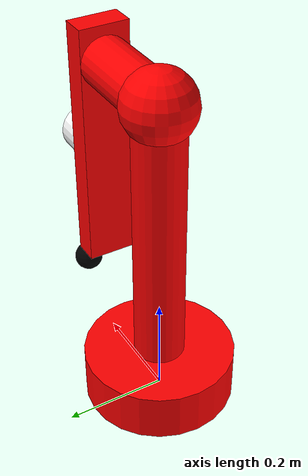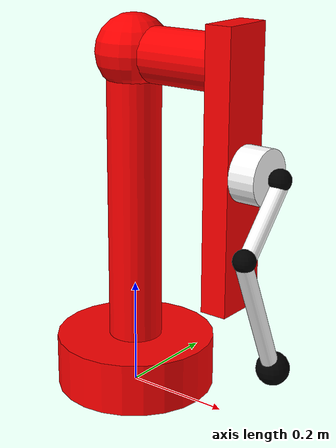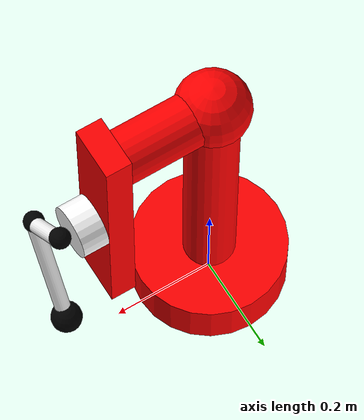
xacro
<?xml version="1.0" ?>
<robot name="dog_leg" xmlns:xacro="http://www.ros.org/wiki/xacro">

    <!-- property of robot -->
    <xacro:property name="under_base_length" value="0.1"/>
    <xacro:property name="under_base_radius" value="0.15"/>

        <!-- property of robot -->
    <xacro:property name="link_1_length" value="0.6"/>
    <xacro:property name="link_1_radius" value="0.05"/>

        <!-- property of robot -->
    <xacro:property name="link_2_radius" value="0.07"/>

            <!-- property of robot -->
    <xacro:property name="link_3_length" value="0.2"/>
    <xacro:property name="link_3_radius" value="0.05"/>

                <!-- property of robot -->
    <xacro:property name="link_4_x" value="0.05"/>
    <xacro:property name="link_4_y" value="0.1"/>
    <xacro:property name="link_4_z" value="0.5"/>

                <!-- property of robot -->
    <xacro:property name="leg_base_length" value="0.05"/>
    <xacro:property name="leg_base_radius" value="0.05"/>

                    <!-- property of robot -->
    <xacro:property name="up_leg_length" value="0.25"/>
    <xacro:property name="up_leg_radius" value="0.025"/>

    <!-- leg -->
    <xacro:property name ="leg1_r" value = "0.015"/>
    <xacro:property name = "leg1_h" value = "0.15"/>
    <xacro:property name = "leg2_r" value = "0.015"/>
    <xacro:property name = "leg2_h" value = "0.25"/>
    <!-- something -->
    <xacro:property name = "effort" value = "300"/>
    <xacro:property name = "velocity" value = "0.5"/>
    <xacro:property name = "lower" value = "-3.14"/>
    <xacro:property name = "upper" value = "3.14"/>

    <link name="dummy">

    </link>
    <joint name="dummy_base" type = "fixed">
	    <parent link="dummy"/>
	    <child link = "under_base"/>

    </joint>
    <link name="under_base">
        <inertial>
            <origin xyz="0.0 0.0 0.0" rpy="0.0 0.0 0.0"/>
            <mass value="1"/>
            <inertia ixx="0.15" ixy="0.0" ixz="0.0" iyy="0.15" iyz="0.0" izz="0.125"/>
        </inertial>
        <visual name="visual">
            <origin xyz="0.0 0.0 ${under_base_length/2}" rpy="0.0 0.0 0.0"/>
            <geometry>
                <cylinder radius="${under_base_radius}" length="${under_base_length}"/>
            </geometry>
            <material name="">
                <color rgba="1.0 0.0 0.0 1.0"/>
            </material>
        </visual>
        <collision>
            <origin xyz="0.0 0.0 ${under_base_length/2}" rpy="0.0 0.0 0.0"/>
            <geometry>
                <cylinder radius="${under_base_radius}" length="${under_base_length}"/>
            </geometry>
        </collision>
    </link>
    <link name="link_1">
        <inertial>
            <origin xyz="0.0 0.0 0.0" rpy="0.0 0.0 0.0"/>
            <mass value="1"/>
            <inertia ixx="0.15" ixy="0.0" ixz="0.0" iyy="0.15" iyz="0.0" izz="0.125"/>
        </inertial>
        <visual name="visual">
            <origin xyz="0.0 0.0 0" rpy="0.0 0.0 0.0"/>
            <geometry>
                <cylinder radius="${link_1_radius}" length="${link_1_length}"/>
            </geometry>
            <material name="">
                <color rgba="1.0 0.0 0.0 1.0"/>
            </material>
        </visual>
        <collision>
            <origin xyz="0.0 0.0 0.0" rpy="0.0 0.0 0.0"/>
            <geometry>
                <cylinder radius="${link_1_radius}" length="${link_1_length}"/>
            </geometry>
        </collision>
    </link>

    <link name="link_2">
        <inertial>
            <origin xyz="0.0 0.0 0.0" rpy="0.0 0.0 0.0"/>
            <mass value="1"/>
            <inertia ixx="0.1" ixy="0.0" ixz="0.0" iyy="0.1" iyz="0.0" izz="0.1"/>
        </inertial>
        <visual name="">
            <origin xyz="0.0 0.0 0.0" rpy="0.0 0.0 0.0"/>
            <geometry>
            <sphere radius="${link_2_radius}"/>
            </geometry>
            <material name="">
                <color rgba="1.0 0.0 0.0 1.0"/>
            </material>
        </visual>
        <collision>
            <origin xyz="0.0 0.0 0.0" rpy="0.0 0.0 0.0"/>
            <geometry>
                <box size="0.0 0.0 0.0"/>
            </geometry>
        </collision>
    </link>

    <link name="link_3">
        <inertial>
            <origin xyz="0.0 0.0 0.0" rpy="0.0 0.0 0.0"/>
            <mass value="1"/>
            <inertia ixx="0.15" ixy="0.0" ixz="0.0" iyy="0.15" iyz="0.0" izz="0.125"/>
        </inertial>
        <visual name="">
            <origin xyz="0.0 0.0 0.0" rpy="0.0 0.0 0.0"/>
            <geometry>
                <cylinder radius="${link_3_radius}" length="${link_3_length}"/>
            </geometry>
            <material name="">1.0
                <color rgba="1.0 0.0 0.0 1.0"/>
            </material>
        </visual>
        <collision>
            <origin xyz="0.0 0.0 0.0" rpy="0.0 0.0 0.0"/>
            <geometry>
                <cylinder radius="${link_3_radius}" length="${link_3_length}"/>
            </geometry>
        </collision>
    </link>

    <link name="link_4">
        <inertial>
            <origin xyz="0.0 0.0 0.0" rpy="0.0 0.0 0.0"/>
            <mass value="0.0"/>
            <inertia ixx="0.166667" ixy="0.0" ixz="0.0" iyy="0.166667" iyz="0.0" izz="0.166667"/>
        </inertial>
        <visual name="">
            <origin xyz="0.0 0.0 0.0" rpy="0.0 0.0 0.0"/>
            <geometry>
                <box size="${link_4_x} ${link_4_y} ${link_4_z}"/>
            </geometry>
            <material name="">
                <color rgba="1.0 0.0 0.0 1.0"/>
            </material>
        </visual>
        <collision>
            <origin xyz="0.0 0.0 0.0" rpy="0.0 0.0 0.0"/>
            <geometry>
                <box size="${link_4_x} ${link_4_y} ${link_4_z}"/>
            </geometry>
        </collision>
    </link>

    <link name="leg_base">
        <inertial>
            <origin xyz="0.0 0.0 0.0" rpy="0.0 1.5707 0.0"/>
            <mass value="1.0"/>
            <inertia ixx="0.0" ixy="0.0" ixz="0.0" iyy="0.0" iyz="0.0" izz="0.0"/>
        </inertial>
        <visual name="">
            <origin xyz="0.0 0.0 0.0" rpy="0.0 1.5707 0.0"/>
            <geometry>
                <cylinder radius="${leg_base_radius}" length="${leg_base_length}"/>
            </geometry>
            <material name="">
                <color rgba="1.0 1.0 1.0 1.0"/>
            </material>
        </visual>
        <collision>
            <origin xyz="0.0 0.0 0.0" rpy="0.0 1.5707 0.0"/>
            <geometry>
                <cylinder radius="${leg_base_radius}" length="${leg_base_length}"/>
            </geometry>
        </collision>
    </link>

<link name="dog_base_leg">
	<visual>
		<origin xyz ="0 0 0" rpy= "0 0 0"/>
		<geometry>
            <sphere radius="0.02"/>
		</geometry>
		<material name = "black">
			<color rgba="0.0 0.0 0.0 1.0"/>
		</material>
	</visual>
</link>
<joint name= " leg1_dog_base_leg" type = "continuous">
    	<origin xyz="0.0 0 0" rpy="0 0 0"/>
    	<parent link="dog_base_leg"/>
    	<child link="dog_leg1"/>
        <limit lower="${lower}" upper="${upper}" effort="${effort}" velocity="${velocity}"/>
</joint>
<link name="dog_leg1">
	<visual>
		<origin xyz ="0 -0.05 -0.065" rpy= "-0.729373 0 0"/>
		<geometry>
			<cylinder length="${leg1_h}" radius="${leg1_r}"/>
		</geometry>
		<material name = "white">
			<color rgba="1.0 1.0 1.0 1.0"/>
		</material>
	</visual>
</link>

<link name="dog_joint1">
	<visual>
		<origin xyz ="0 0 0" rpy= "0 0 0"/>
		<geometry>
            <sphere radius="0.02"/>
		</geometry>
		<material name = "black">
			<color rgba="0.0 0.0 0.0 1.0"/>
		</material>
	</visual>
</link>

    <joint name="under_base_to_link_1" type="fixed">
        <origin xyz="0.0 0.0 ${(under_base_length + link_1_length)/2}" rpy="0.0 0.0 0.0"/>
        <parent link="under_base"/>
        <child link="link_1"/>
        <axis xyz="0.0 0.0 0.0"/>
    </joint>

    <joint name="link_1_to_link_2" type="fixed">
        <origin xyz="0.0 0.0 ${(link_1_length)/2 -0.01}" rpy="0.0 0.0 0.0"/>
        <parent link="link_1"/>
        <child link="link_2"/>
        <axis xyz="0.0 0.0 0.0"/>
    </joint>

    <joint name="link_2_to_link_3" type="fixed">
        <origin xyz="${link_3_length/2 - 0.01} 0.0 0.0" rpy="0.0 1.5707 0.0"/>
        <parent link="link_2"/>
        <child link="link_3"/>
        <axis xyz="0.0 0.0 0.0"/>
    </joint>

    <joint name="link_3_to_link_4" type="fixed">
        <origin xyz="0.18 0.0 ${(link_3_length + link_4_x)/2}" rpy="0.0 -1.5707 0.0"/>
        <parent link="link_3"/>
        <child link="link_4"/>
        <axis xyz="0.0 0.0 0.0"/>
    </joint>

    <joint name="link_4_to_leg_base" type="fixed"> <!--  i want to use ....-->
        <origin xyz="${(leg_base_length + link_4_x)/2} 0.0 0.0" rpy="0.0 0.0 0.0"/>
        <parent link="link_4"/>
        <child link="leg_base"/>
        <axis xyz="0.0 0.0 0.0"/>
    </joint>

    <joint name="dog_base_leg_to_leg_base" type="fixed">
        <origin xyz="${(leg_base_length + 0.04)/2} 0.0 0.0" rpy="0.0 0.0 0.0"/>
        <parent link="leg_base"/>
        <child link="dog_base_leg"/>
        <axis xyz="0.0 0.0 0.0"/>
    </joint>

    <joint name= " dog_leg1_joint1" type = "continuous">
    	<origin xyz="0 -0.1 -0.1118" rpy="0 0 0"/>
    	<parent link="dog_leg1"/>
    	<child link="dog_joint1"/>
        <limit lower="${lower}" upper="${upper}" effort="${effort}" velocity="${velocity}"/>
    </joint>
    <link name="dog_leg22">
	<visual>
		<origin xyz ="0 0.045 -0.1118" rpy= "0.411322 0 0"/>
		<geometry>
			<cylinder length="${leg2_h}" radius="${leg2_r}"/>
		</geometry>
		<material name = "white">
			<color rgba="1.0 1.0 1.0 1.0"/>
		</material>
	</visual>
</link>
<joint name= " dog_leg22_joint1" type = "fixed">
    	<origin xyz="0 0 0" rpy="0 0 0"/>
    	<parent link="dog_joint1"/>
    	<child link="dog_leg22"/>
</joint>
<link name="dog_roller1">
	<visual>
		<origin xyz ="0 0 0" rpy= "0 0 0"/>
		<geometry>
			<sphere radius="0.03"/>
		</geometry>
		<material name = "black">
			<color rgba="0.0 0.0 0.0 1.0"/>
		</material>
	</visual>
</link>
<joint name= " dog_leg22_roller1" type = "fixed">
    	<origin xyz="0 0.1 -0.22912" rpy="0 0 0"/>
    	<parent link="dog_leg22"/>
    	<child link="dog_roller1"/>
</joint>

</robot>
